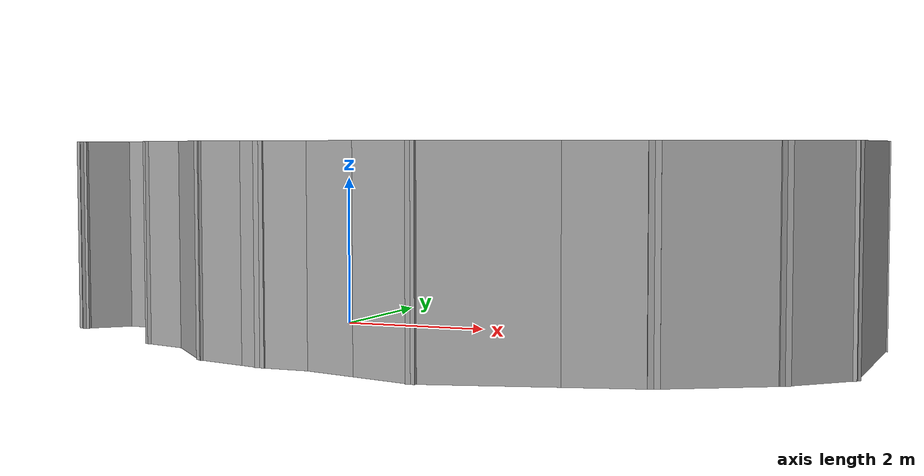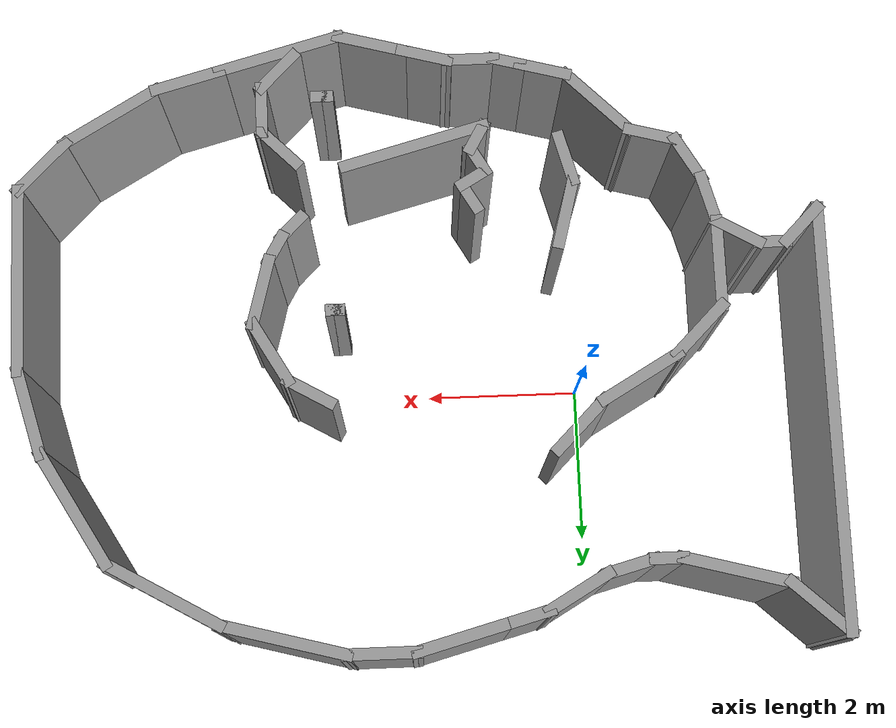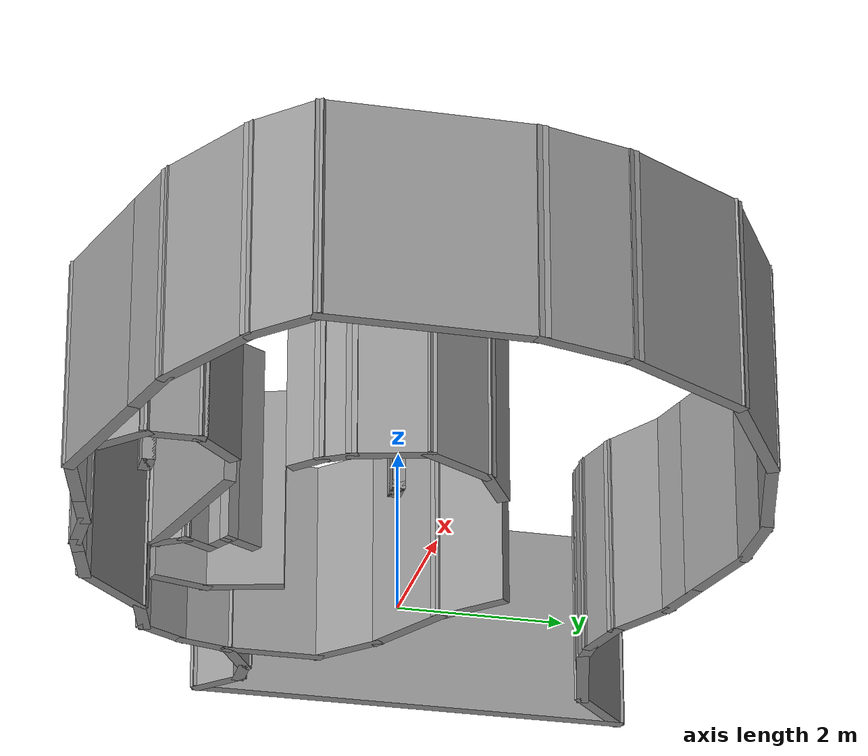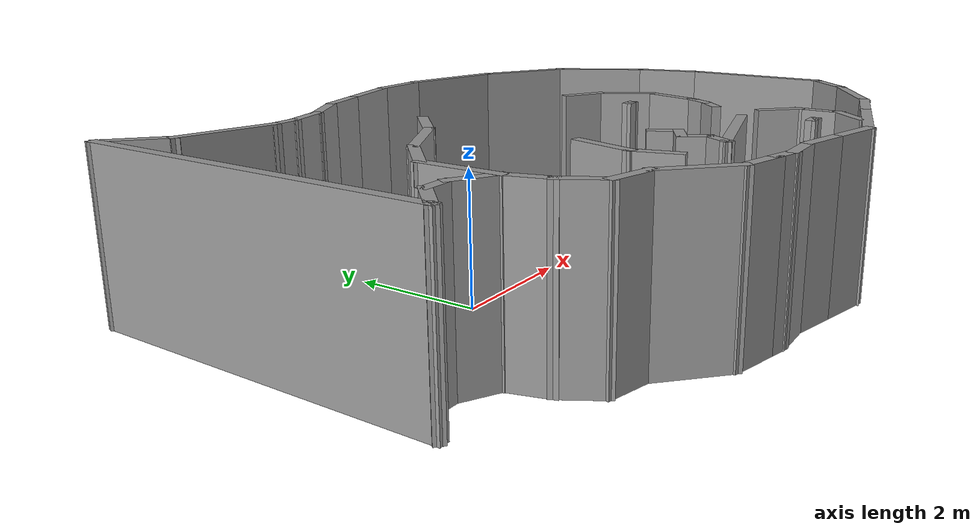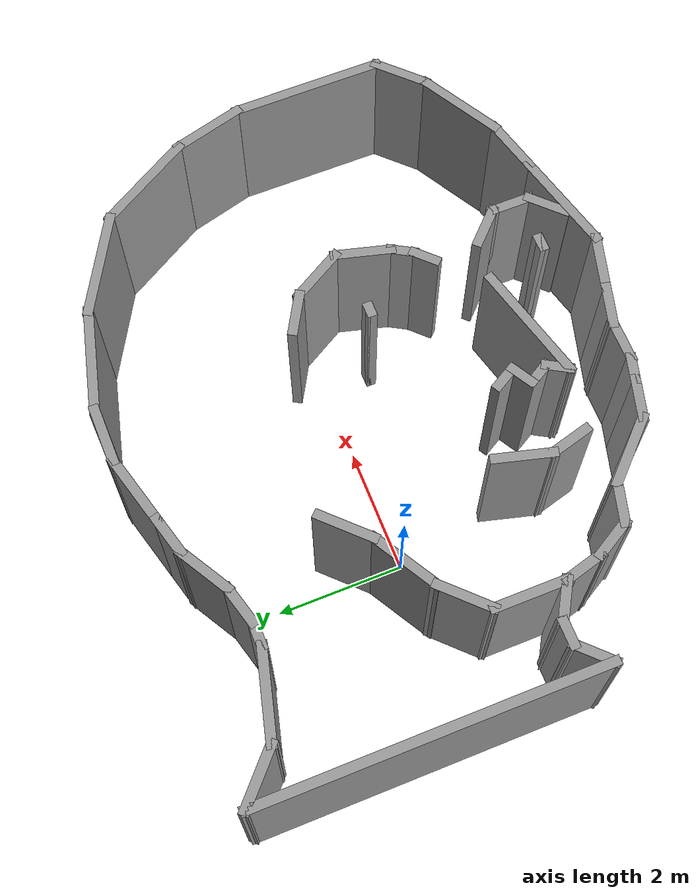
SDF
<?xml version='1.0'?>
<sdf version='1.6'>
  <model name='mememan'>
    <pose frame=''>2.08033 -0.403156 0 0 -0 -1.57</pose>
    <link name='Wall_0'>
      <collision name='Wall_0_Collision'>
        <geometry>
          <box>
            <size>1.5 0.15 2.5</size>
          </box>
        </geometry>
        <pose frame=''>0 0 1.25 0 -0 0</pose>
      </collision>
      <visual name='Wall_0_Visual'>
        <pose frame=''>0 0 1.25 0 -0 0</pose>
        <geometry>
          <box>
            <size>1.5 0.15 2.5</size>
          </box>
        </geometry>
        <material>
          <script>
            <uri>file://media/materials/scripts/gazebo.material</uri>
            <name>Gazebo/Grey</name>
          </script>
          <ambient>1 1 1 1</ambient>
        </material>
        <meta>
          <layer>0</layer>
        </meta>
      </visual>
      <pose frame=''>-3.11563 -3.74484 0 0 -0 1.309</pose>
    </link>
    <link name='Wall_10'>
      <collision name='Wall_10_Collision'>
        <geometry>
          <box>
            <size>1.75 0.15 2.5</size>
          </box>
        </geometry>
        <pose frame=''>0 0 1.25 0 -0 0</pose>
      </collision>
      <visual name='Wall_10_Visual'>
        <pose frame=''>0 0 1.25 0 -0 0</pose>
        <geometry>
          <box>
            <size>1.75 0.15 2.5</size>
          </box>
        </geometry>
        <material>
          <script>
            <uri>file://media/materials/scripts/gazebo.material</uri>
            <name>Gazebo/Grey</name>
          </script>
          <ambient>1 1 1 1</ambient>
        </material>
        <meta>
          <layer>0</layer>
        </meta>
      </visual>
      <pose frame=''>-3.1471 3.30321 0 0 -0 1.0472</pose>
    </link>
    <link name='Wall_11'>
      <collision name='Wall_11_Collision'>
        <geometry>
          <box>
            <size>1.75 0.15 2.5</size>
          </box>
        </geometry>
        <pose frame=''>0 0 1.25 0 -0 0</pose>
      </collision>
      <visual name='Wall_11_Visual'>
        <pose frame=''>0 0 1.25 0 -0 0</pose>
        <geometry>
          <box>
            <size>1.75 0.15 2.5</size>
          </box>
        </geometry>
        <material>
          <script>
            <uri>file://media/materials/scripts/gazebo.material</uri>
            <name>Gazebo/Grey</name>
          </script>
          <ambient>1 1 1 1</ambient>
        </material>
        <meta>
          <layer>0</layer>
        </meta>
      </visual>
      <pose frame=''>-2.05428 4.39603 0 0 -0 0.523599</pose>
    </link>
    <link name='Wall_12'>
      <collision name='Wall_12_Collision'>
        <geometry>
          <box>
            <size>1.25 0.15 2.5</size>
          </box>
        </geometry>
        <pose frame=''>0 0 1.25 0 -0 0</pose>
      </collision>
      <visual name='Wall_12_Visual'>
        <pose frame=''>0 0 1.25 0 -0 0</pose>
        <geometry>
          <box>
            <size>1.25 0.15 2.5</size>
          </box>
        </geometry>
        <material>
          <script>
            <uri>file://media/materials/scripts/gazebo.material</uri>
            <name>Gazebo/Grey</name>
          </script>
          <ambient>1 1 1 1</ambient>
        </material>
        <meta>
          <layer>0</layer>
        </meta>
      </visual>
      <pose frame=''>-0.830198 4.93838 0 0 -0 0.261799</pose>
    </link>
    <link name='Wall_13'>
      <collision name='Wall_13_Collision'>
        <geometry>
          <box>
            <size>2.5 0.15 2.5</size>
          </box>
        </geometry>
        <pose frame=''>0 0 1.25 0 -0 0</pose>
      </collision>
      <visual name='Wall_13_Visual'>
        <pose frame=''>0 0 1.25 0 -0 0</pose>
        <geometry>
          <box>
            <size>2.5 0.15 2.5</size>
          </box>
        </geometry>
        <material>
          <script>
            <uri>file://media/materials/scripts/gazebo.material</uri>
            <name>Gazebo/Grey</name>
          </script>
          <ambient>1 1 1 1</ambient>
        </material>
        <meta>
          <layer>0</layer>
        </meta>
      </visual>
      <pose frame=''>0.876061 5.08073 0 0 -0 0</pose>
    </link>
    <link name='Wall_14'>
      <collision name='Wall_14_Collision'>
        <geometry>
          <box>
            <size>1 0.15 2.5</size>
          </box>
        </geometry>
        <pose frame=''>0 0 1.25 0 -0 0</pose>
      </collision>
      <visual name='Wall_14_Visual'>
        <pose frame=''>0 0 1.25 0 -0 0</pose>
        <geometry>
          <box>
            <size>1 0.15 2.5</size>
          </box>
        </geometry>
        <material>
          <script>
            <uri>file://media/materials/scripts/gazebo.material</uri>
            <name>Gazebo/Grey</name>
          </script>
          <ambient>1 1 1 1</ambient>
        </material>
        <meta>
          <layer>0</layer>
        </meta>
      </visual>
      <pose frame=''>2.35158 4.78021 0 0 -0 -0.785398</pose>
    </link>
    <link name='Wall_15'>
      <collision name='Wall_15_Collision'>
        <geometry>
          <box>
            <size>1.5 0.15 2.5</size>
          </box>
        </geometry>
        <pose frame=''>0 0 1.25 0 -0 0</pose>
      </collision>
      <visual name='Wall_15_Visual'>
        <pose frame=''>0 0 1.25 0 -0 0</pose>
        <geometry>
          <box>
            <size>1.5 0.15 2.5</size>
          </box>
        </geometry>
        <material>
          <script>
            <uri>file://media/materials/scripts/gazebo.material</uri>
            <name>Gazebo/Grey</name>
          </script>
          <ambient>1 1 1 1</ambient>
        </material>
        <meta>
          <layer>0</layer>
        </meta>
      </visual>
      <pose frame=''>2.9896 3.89512 0 0 -0 -1.0472</pose>
    </link>
    <link name='Wall_16'>
      <collision name='Wall_16_Collision'>
        <geometry>
          <box>
            <size>1 0.15 2.5</size>
          </box>
        </geometry>
        <pose frame=''>0 0 1.25 0 -0 0</pose>
      </collision>
      <visual name='Wall_16_Visual'>
        <pose frame=''>0 0 1.25 0 -0 0</pose>
        <geometry>
          <box>
            <size>1 0.15 2.5</size>
          </box>
        </geometry>
        <material>
          <script>
            <uri>file://media/materials/scripts/gazebo.material</uri>
            <name>Gazebo/Grey</name>
          </script>
          <ambient>1 1 1 1</ambient>
        </material>
        <meta>
          <layer>0</layer>
        </meta>
      </visual>
      <pose frame=''>3.4371 2.90004 0 0 -0 -1.309</pose>
    </link>
    <link name='Wall_17'>
      <collision name='Wall_17_Collision'>
        <geometry>
          <box>
            <size>1.75 0.15 2.5</size>
          </box>
        </geometry>
        <pose frame=''>0 0 1.25 0 -0 0</pose>
      </collision>
      <visual name='Wall_17_Visual'>
        <pose frame=''>0 0 1.25 0 -0 0</pose>
        <geometry>
          <box>
            <size>1.75 0.15 2.5</size>
          </box>
        </geometry>
        <material>
          <script>
            <uri>file://media/materials/scripts/gazebo.material</uri>
            <name>Gazebo/Grey</name>
          </script>
          <ambient>1 1 1 1</ambient>
        </material>
        <meta>
          <layer>0</layer>
        </meta>
      </visual>
      <pose frame=''>3.75415 1.71678 0 0 -0 -1.309</pose>
    </link>
    <link name='Wall_18'>
      <collision name='Wall_18_Collision'>
        <geometry>
          <box>
            <size>1 0.15 2.5</size>
          </box>
        </geometry>
        <pose frame=''>0 0 1.25 0 -0 0</pose>
      </collision>
      <visual name='Wall_18_Visual'>
        <pose frame=''>0 0 1.25 0 -0 0</pose>
        <geometry>
          <box>
            <size>1 0.15 2.5</size>
          </box>
        </geometry>
        <material>
          <script>
            <uri>file://media/materials/scripts/gazebo.material</uri>
            <name>Gazebo/Grey</name>
          </script>
          <ambient>1 1 1 1</ambient>
        </material>
        <meta>
          <layer>0</layer>
        </meta>
      </visual>
      <pose frame=''>3.85121 0.533518 0 0 -0 -1.8326</pose>
    </link>
    <link name='Wall_2'>
      <collision name='Wall_2_Collision'>
        <geometry>
          <box>
            <size>0.5 0.15 2.5</size>
          </box>
        </geometry>
        <pose frame=''>0 0 1.25 0 -0 0</pose>
      </collision>
      <visual name='Wall_2_Visual'>
        <pose frame=''>0 0 1.25 0 -0 0</pose>
        <geometry>
          <box>
            <size>0.5 0.15 2.5</size>
          </box>
        </geometry>
        <material>
          <script>
            <uri>file://media/materials/scripts/gazebo.material</uri>
            <name>Gazebo/Grey</name>
          </script>
          <ambient>1 1 1 1</ambient>
        </material>
        <meta>
          <layer>0</layer>
        </meta>
      </visual>
      <pose frame=''>-2.94093 -2.91784 0 0 -0 1.5708</pose>
    </link>
    <link name='Wall_20'>
      <collision name='Wall_20_Collision'>
        <geometry>
          <box>
            <size>0.75 0.15 2.5</size>
          </box>
        </geometry>
        <pose frame=''>0 0 1.25 0 -0 0</pose>
      </collision>
      <visual name='Wall_20_Visual'>
        <pose frame=''>0 0 1.25 0 -0 0</pose>
        <geometry>
          <box>
            <size>0.75 0.15 2.5</size>
          </box>
        </geometry>
        <material>
          <script>
            <uri>file://media/materials/scripts/gazebo.material</uri>
            <name>Gazebo/Grey</name>
          </script>
          <ambient>1 1 1 1</ambient>
        </material>
        <meta>
          <layer>0</layer>
        </meta>
      </visual>
      <pose frame=''>3.66357 -0.166778 0 0 -0 -1.8326</pose>
    </link>
    <link name='Wall_21'>
      <collision name='Wall_21_Collision'>
        <geometry>
          <box>
            <size>0.75 0.15 2.5</size>
          </box>
        </geometry>
        <pose frame=''>0 0 1.25 0 -0 0</pose>
      </collision>
      <visual name='Wall_21_Visual'>
        <pose frame=''>0 0 1.25 0 -0 0</pose>
        <geometry>
          <box>
            <size>0.75 0.15 2.5</size>
          </box>
        </geometry>
        <material>
          <script>
            <uri>file://media/materials/scripts/gazebo.material</uri>
            <name>Gazebo/Grey</name>
          </script>
          <ambient>1 1 1 1</ambient>
        </material>
        <meta>
          <layer>0</layer>
        </meta>
      </visual>
      <pose frame=''>3.58592 -0.756556 0 0 -0 -1.5708</pose>
    </link>
    <link name='Wall_22'>
      <collision name='Wall_22_Collision'>
        <geometry>
          <box>
            <size>0.5 0.15 2.5</size>
          </box>
        </geometry>
        <pose frame=''>0 0 1.25 0 -0 0</pose>
      </collision>
      <visual name='Wall_22_Visual'>
        <pose frame=''>0 0 1.25 0 -0 0</pose>
        <geometry>
          <box>
            <size>0.5 0.15 2.5</size>
          </box>
        </geometry>
        <material>
          <script>
            <uri>file://media/materials/scripts/gazebo.material</uri>
            <name>Gazebo/Grey</name>
          </script>
          <ambient>1 1 1 1</ambient>
        </material>
        <meta>
          <layer>0</layer>
        </meta>
      </visual>
      <pose frame=''>3.54063 -1.22559 0 0 -0 -1.8326</pose>
    </link>
    <link name='Wall_23'>
      <collision name='Wall_23_Collision'>
        <geometry>
          <box>
            <size>0.75 0.15 2.5</size>
          </box>
        </geometry>
        <pose frame=''>0 0 1.25 0 -0 0</pose>
      </collision>
      <visual name='Wall_23_Visual'>
        <pose frame=''>0 0 1.25 0 -0 0</pose>
        <geometry>
          <box>
            <size>0.75 0.15 2.5</size>
          </box>
        </geometry>
        <material>
          <script>
            <uri>file://media/materials/scripts/gazebo.material</uri>
            <name>Gazebo/Grey</name>
          </script>
          <ambient>1 1 1 1</ambient>
        </material>
        <meta>
          <layer>0</layer>
        </meta>
      </visual>
      <pose frame=''>3.41769 -1.68441 0 0 -0 -1.8326</pose>
    </link>
    <link name='Wall_24'>
      <collision name='Wall_24_Collision'>
        <geometry>
          <box>
            <size>1.25 0.15 2.5</size>
          </box>
        </geometry>
        <pose frame=''>0 0 1.25 0 -0 0</pose>
      </collision>
      <visual name='Wall_24_Visual'>
        <pose frame=''>0 0 1.25 0 -0 0</pose>
        <geometry>
          <box>
            <size>1.25 0.15 2.5</size>
          </box>
        </geometry>
        <material>
          <script>
            <uri>file://media/materials/scripts/gazebo.material</uri>
            <name>Gazebo/Grey</name>
          </script>
          <ambient>1 1 1 1</ambient>
        </material>
        <meta>
          <layer>0</layer>
        </meta>
      </visual>
      <pose frame=''>2.95113 -2.36309 0 0 -0 -2.35619</pose>
    </link>
    <link name='Wall_26'>
      <collision name='Wall_26_Collision'>
        <geometry>
          <box>
            <size>0.75 0.15 2.5</size>
          </box>
        </geometry>
        <pose frame=''>0 0 1.25 0 -0 0</pose>
      </collision>
      <visual name='Wall_26_Visual'>
        <pose frame=''>0 0 1.25 0 -0 0</pose>
        <geometry>
          <box>
            <size>0.75 0.15 2.5</size>
          </box>
        </geometry>
        <material>
          <script>
            <uri>file://media/materials/scripts/gazebo.material</uri>
            <name>Gazebo/Grey</name>
          </script>
          <ambient>1 1 1 1</ambient>
        </material>
        <meta>
          <layer>0</layer>
        </meta>
      </visual>
      <pose frame=''>2.48458 -3.04178 0 0 -0 -1.8326</pose>
    </link>
    <link name='Wall_27'>
      <collision name='Wall_27_Collision'>
        <geometry>
          <box>
            <size>0.75 0.15 2.5</size>
          </box>
        </geometry>
        <pose frame=''>0 0 1.25 0 -0 0</pose>
      </collision>
      <visual name='Wall_27_Visual'>
        <pose frame=''>0 0 1.25 0 -0 0</pose>
        <geometry>
          <box>
            <size>0.75 0.15 2.5</size>
          </box>
        </geometry>
        <material>
          <script>
            <uri>file://media/materials/scripts/gazebo.material</uri>
            <name>Gazebo/Grey</name>
          </script>
          <ambient>1 1 1 1</ambient>
        </material>
        <meta>
          <layer>0</layer>
        </meta>
      </visual>
      <pose frame=''>2.14713 -3.48156 0 0 -0 -2.61799</pose>
    </link>
    <link name='Wall_28'>
      <collision name='Wall_28_Collision'>
        <geometry>
          <box>
            <size>0.75 0.15 2.5</size>
          </box>
        </geometry>
        <pose frame=''>0 0 1.25 0 -0 0</pose>
      </collision>
      <visual name='Wall_28_Visual'>
        <pose frame=''>0 0 1.25 0 -0 0</pose>
        <geometry>
          <box>
            <size>0.75 0.15 2.5</size>
          </box>
        </geometry>
        <material>
          <script>
            <uri>file://media/materials/scripts/gazebo.material</uri>
            <name>Gazebo/Grey</name>
          </script>
          <ambient>1 1 1 1</ambient>
        </material>
        <meta>
          <layer>0</layer>
        </meta>
      </visual>
      <pose frame=''>1.59754 -3.7092 0 0 -0 -2.87979</pose>
    </link>
    <link name='Wall_29'>
      <collision name='Wall_29_Collision'>
        <geometry>
          <box>
            <size>1.25 0.15 2.5</size>
          </box>
        </geometry>
        <pose frame=''>0 0 1.25 0 -0 0</pose>
      </collision>
      <visual name='Wall_29_Visual'>
        <pose frame=''>0 0 1.25 0 -0 0</pose>
        <geometry>
          <box>
            <size>1.25 0.15 2.5</size>
          </box>
        </geometry>
        <material>
          <script>
            <uri>file://media/materials/scripts/gazebo.material</uri>
            <name>Gazebo/Grey</name>
          </script>
          <ambient>1 1 1 1</ambient>
        </material>
        <meta>
          <layer>0</layer>
        </meta>
      </visual>
      <pose frame=''>0.757763 -3.78685 0 0 -0 3.14159</pose>
    </link>
    <link name='Wall_3'>
      <collision name='Wall_3_Collision'>
        <geometry>
          <box>
            <size>0.75 0.15 2.5</size>
          </box>
        </geometry>
        <pose frame=''>0 0 1.25 0 -0 0</pose>
      </collision>
      <visual name='Wall_3_Visual'>
        <pose frame=''>0 0 1.25 0 -0 0</pose>
        <geometry>
          <box>
            <size>0.75 0.15 2.5</size>
          </box>
        </geometry>
        <material>
          <script>
            <uri>file://media/materials/scripts/gazebo.material</uri>
            <name>Gazebo/Grey</name>
          </script>
          <ambient>1 1 1 1</ambient>
        </material>
        <meta>
          <layer>0</layer>
        </meta>
      </visual>
      <pose frame=''>-3.01857 -2.45307 0 0 -0 1.8326</pose>
    </link>
    <link name='Wall_31'>
      <collision name='Wall_31_Collision'>
        <geometry>
          <box>
            <size>1 0.15 2.5</size>
          </box>
        </geometry>
        <pose frame=''>0 0 1.25 0 -0 0</pose>
      </collision>
      <visual name='Wall_31_Visual'>
        <pose frame=''>0 0 1.25 0 -0 0</pose>
        <geometry>
          <box>
            <size>1 0.15 2.5</size>
          </box>
        </geometry>
        <material>
          <script>
            <uri>file://media/materials/scripts/gazebo.material</uri>
            <name>Gazebo/Grey</name>
          </script>
          <ambient>1 1 1 1</ambient>
        </material>
        <meta>
          <layer>0</layer>
        </meta>
      </visual>
      <pose frame=''>-0.092757 -3.48633 0 0 -0 2.35619</pose>
    </link>
    <link name='Wall_32'>
      <collision name='Wall_32_Collision'>
        <geometry>
          <box>
            <size>1.25 0.15 2.5</size>
          </box>
        </geometry>
        <pose frame=''>0 0 1.25 0 -0 0</pose>
      </collision>
      <visual name='Wall_32_Visual'>
        <pose frame=''>0 0 1.25 0 -0 0</pose>
        <geometry>
          <box>
            <size>1.25 0.15 2.5</size>
          </box>
        </geometry>
        <material>
          <script>
            <uri>file://media/materials/scripts/gazebo.material</uri>
            <name>Gazebo/Grey</name>
          </script>
          <ambient>1 1 1 1</ambient>
        </material>
        <meta>
          <layer>0</layer>
        </meta>
      </visual>
      <pose frame=''>-0.668278 -2.70949 0 0 -0 2.0944</pose>
    </link>
    <link name='Wall_33'>
      <collision name='Wall_33_Collision'>
        <geometry>
          <box>
            <size>1 0.15 2.5</size>
          </box>
        </geometry>
        <pose frame=''>0 0 1.25 0 -0 0</pose>
      </collision>
      <visual name='Wall_33_Visual'>
        <pose frame=''>0 0 1.25 0 -0 0</pose>
        <geometry>
          <box>
            <size>1 0.15 2.5</size>
          </box>
        </geometry>
        <material>
          <script>
            <uri>file://media/materials/scripts/gazebo.material</uri>
            <name>Gazebo/Grey</name>
          </script>
          <ambient>1 1 1 1</ambient>
        </material>
        <meta>
          <layer>0</layer>
        </meta>
      </visual>
      <pose frame=''>-1.2438 -1.93266 0 0 -0 2.35619</pose>
    </link>
    <link name='Wall_35'>
      <collision name='Wall_35_Collision'>
        <geometry>
          <box>
            <size>0.75 0.15 2.5</size>
          </box>
        </geometry>
        <pose frame=''>0 0 1.25 0 -0 0</pose>
      </collision>
      <visual name='Wall_35_Visual'>
        <pose frame=''>0 0 1.25 0 -0 0</pose>
        <geometry>
          <box>
            <size>0.75 0.15 2.5</size>
          </box>
        </geometry>
        <material>
          <script>
            <uri>file://media/materials/scripts/gazebo.material</uri>
            <name>Gazebo/Grey</name>
          </script>
          <ambient>1 1 1 1</ambient>
        </material>
        <meta>
          <layer>0</layer>
        </meta>
      </visual>
      <pose frame=''>1.15776 -4.04666 0 0 -0 -2.0944</pose>
    </link>
    <link name='Wall_36'>
      <collision name='Wall_36_Collision'>
        <geometry>
          <box>
            <size>0.5 0.15 2.5</size>
          </box>
        </geometry>
        <pose frame=''>0 0 1.25 0 -0 0</pose>
      </collision>
      <visual name='Wall_36_Visual'>
        <pose frame=''>0 0 1.25 0 -0 0</pose>
        <geometry>
          <box>
            <size>0.5 0.15 2.5</size>
          </box>
        </geometry>
        <material>
          <script>
            <uri>file://media/materials/scripts/gazebo.material</uri>
            <name>Gazebo/Grey</name>
          </script>
          <ambient>1 1 1 1</ambient>
        </material>
        <meta>
          <layer>0</layer>
        </meta>
      </visual>
      <pose frame=''>1.00776 -4.48147 0 0 -0 -1.5708</pose>
    </link>
    <link name='Wall_37'>
      <collision name='Wall_37_Collision'>
        <geometry>
          <box>
            <size>0.75 0.15 2.5</size>
          </box>
        </geometry>
        <pose frame=''>0 0 1.25 0 -0 0</pose>
      </collision>
      <visual name='Wall_37_Visual'>
        <pose frame=''>0 0 1.25 0 -0 0</pose>
        <geometry>
          <box>
            <size>0.75 0.15 2.5</size>
          </box>
        </geometry>
        <material>
          <script>
            <uri>file://media/materials/scripts/gazebo.material</uri>
            <name>Gazebo/Grey</name>
          </script>
          <ambient>1 1 1 1</ambient>
        </material>
        <meta>
          <layer>0</layer>
        </meta>
      </visual>
      <pose frame=''>1.21989 -4.8686 0 0 -0 -0.785398</pose>
    </link>
    <link name='Wall_38'>
      <collision name='Wall_38_Collision'>
        <geometry>
          <box>
            <size>5.5 0.15 2.5</size>
          </box>
        </geometry>
        <pose frame=''>0 0 1.25 0 -0 0</pose>
      </collision>
      <visual name='Wall_38_Visual'>
        <pose frame=''>0 0 1.25 0 -0 0</pose>
        <geometry>
          <box>
            <size>5.5 0.15 2.5</size>
          </box>
        </geometry>
        <material>
          <script>
            <uri>file://media/materials/scripts/gazebo.material</uri>
            <name>Gazebo/Grey</name>
          </script>
          <ambient>1 1 1 1</ambient>
        </material>
        <meta>
          <layer>0</layer>
        </meta>
      </visual>
      <pose frame=''>-1.24297 -5.08073 0 0 -0 3.14159</pose>
    </link>
    <link name='Wall_39'>
      <collision name='Wall_39_Collision'>
        <geometry>
          <box>
            <size>1.07824 0.15 2.5</size>
          </box>
        </geometry>
        <pose frame=''>0 0 1.25 0 -0 0</pose>
      </collision>
      <visual name='Wall_39_Visual'>
        <pose frame=''>0 0 1.25 0 -0 0</pose>
        <geometry>
          <box>
            <size>1.07824 0.15 2.5</size>
          </box>
        </geometry>
        <material>
          <script>
            <uri>file://media/materials/scripts/gazebo.material</uri>
            <name>Gazebo/Grey</name>
          </script>
          <ambient>1 1 1 1</ambient>
        </material>
        <meta>
          <layer>0</layer>
        </meta>
      </visual>
      <pose frame=''>-3.60415 -4.73879 0 0 -0 0.828255</pose>
    </link>
    <link name='Wall_4'>
      <collision name='Wall_4_Collision'>
        <geometry>
          <box>
            <size>1 0.15 2.5</size>
          </box>
        </geometry>
        <pose frame=''>0 0 1.25 0 -0 0</pose>
      </collision>
      <visual name='Wall_4_Visual'>
        <pose frame=''>0 0 1.25 0 -0 0</pose>
        <geometry>
          <box>
            <size>1 0.15 2.5</size>
          </box>
        </geometry>
        <material>
          <script>
            <uri>file://media/materials/scripts/gazebo.material</uri>
            <name>Gazebo/Grey</name>
          </script>
          <ambient>1 1 1 1</ambient>
        </material>
        <meta>
          <layer>0</layer>
        </meta>
      </visual>
      <pose frame=''>-3.30872 -1.79523 0 0 -0 2.0944</pose>
    </link>
    <link name='Wall_41'>
      <collision name='Wall_41_Collision'>
        <geometry>
          <box>
            <size>0.75 0.15 2.5</size>
          </box>
        </geometry>
        <pose frame=''>0 0 1.25 0 -0 0</pose>
      </collision>
      <visual name='Wall_41_Visual'>
        <pose frame=''>0 0 1.25 0 -0 0</pose>
        <geometry>
          <box>
            <size>0.75 0.15 2.5</size>
          </box>
        </geometry>
        <material>
          <script>
            <uri>file://media/materials/scripts/gazebo.material</uri>
            <name>Gazebo/Grey</name>
          </script>
          <ambient>1 1 1 1</ambient>
        </material>
        <meta>
          <layer>0</layer>
        </meta>
      </visual>
      <pose frame=''>2.48811 1.74223 0 0 -0 0.785398</pose>
    </link>
    <link name='Wall_42'>
      <collision name='Wall_42_Collision'>
        <geometry>
          <box>
            <size>0.15 0.15 2.5</size>
          </box>
        </geometry>
        <pose frame=''>0 0 1.25 0 -0 0</pose>
      </collision>
      <visual name='Wall_42_Visual'>
        <pose frame=''>0 0 1.25 0 -0 0</pose>
        <geometry>
          <box>
            <size>0.15 0.15 2.5</size>
          </box>
        </geometry>
        <material>
          <script>
            <uri>file://media/materials/scripts/gazebo.material</uri>
            <name>Gazebo/Grey</name>
          </script>
          <ambient>1 1 1 1</ambient>
        </material>
        <meta>
          <layer>0</layer>
        </meta>
      </visual>
      <pose frame=''>2.70024 1.95436 0 0 -0 0</pose>
    </link>
    <link name='Wall_43'>
      <collision name='Wall_43_Collision'>
        <geometry>
          <box>
            <size>0.75 0.15 2.5</size>
          </box>
        </geometry>
        <pose frame=''>0 0 1.25 0 -0 0</pose>
      </collision>
      <visual name='Wall_43_Visual'>
        <pose frame=''>0 0 1.25 0 -0 0</pose>
        <geometry>
          <box>
            <size>0.75 0.15 2.5</size>
          </box>
        </geometry>
        <material>
          <script>
            <uri>file://media/materials/scripts/gazebo.material</uri>
            <name>Gazebo/Grey</name>
          </script>
          <ambient>1 1 1 1</ambient>
        </material>
        <meta>
          <layer>0</layer>
        </meta>
      </visual>
      <pose frame=''>3.00024 1.95436 0 0 -0 0</pose>
    </link>
    <link name='Wall_44'>
      <collision name='Wall_44_Collision'>
        <geometry>
          <box>
            <size>0.75 0.15 2.5</size>
          </box>
        </geometry>
        <pose frame=''>0 0 1.25 0 -0 0</pose>
      </collision>
      <visual name='Wall_44_Visual'>
        <pose frame=''>0 0 1.25 0 -0 0</pose>
        <geometry>
          <box>
            <size>0.75 0.15 2.5</size>
          </box>
        </geometry>
        <material>
          <script>
            <uri>file://media/materials/scripts/gazebo.material</uri>
            <name>Gazebo/Grey</name>
          </script>
          <ambient>1 1 1 1</ambient>
        </material>
        <meta>
          <layer>0</layer>
        </meta>
      </visual>
      <pose frame=''>3.51237 1.74223 0 0 -0 -0.785398</pose>
    </link>
    <link name='Wall_46'>
      <collision name='Wall_46_Collision'>
        <geometry>
          <box>
            <size>0.5 0.15 2.5</size>
          </box>
        </geometry>
        <pose frame=''>0 0 1.25 0 -0 0</pose>
      </collision>
      <visual name='Wall_46_Visual'>
        <pose frame=''>0 0 1.25 0 -0 0</pose>
        <geometry>
          <box>
            <size>0.5 0.15 2.5</size>
          </box>
        </geometry>
        <material>
          <script>
            <uri>file://media/materials/scripts/gazebo.material</uri>
            <name>Gazebo/Grey</name>
          </script>
          <ambient>1 1 1 1</ambient>
        </material>
        <meta>
          <layer>0</layer>
        </meta>
      </visual>
      <pose frame=''>1.43518 1.60758 0 0 -0 2.35619</pose>
    </link>
    <link name='Wall_47'>
      <collision name='Wall_47_Collision'>
        <geometry>
          <box>
            <size>0.5 0.15 2.5</size>
          </box>
        </geometry>
        <pose frame=''>0 0 1.25 0 -0 0</pose>
      </collision>
      <visual name='Wall_47_Visual'>
        <pose frame=''>0 0 1.25 0 -0 0</pose>
        <geometry>
          <box>
            <size>0.5 0.15 2.5</size>
          </box>
        </geometry>
        <material>
          <script>
            <uri>file://media/materials/scripts/gazebo.material</uri>
            <name>Gazebo/Grey</name>
          </script>
          <ambient>1 1 1 1</ambient>
        </material>
        <meta>
          <layer>0</layer>
        </meta>
      </visual>
      <pose frame=''>1.15988 1.81882 0 0 -0 2.61799</pose>
    </link>
    <link name='Wall_48'>
      <collision name='Wall_48_Collision'>
        <geometry>
          <box>
            <size>1 0.15 2.5</size>
          </box>
        </geometry>
        <pose frame=''>0 0 1.25 0 -0 0</pose>
      </collision>
      <visual name='Wall_48_Visual'>
        <pose frame=''>0 0 1.25 0 -0 0</pose>
        <geometry>
          <box>
            <size>1 0.15 2.5</size>
          </box>
        </geometry>
        <material>
          <script>
            <uri>file://media/materials/scripts/gazebo.material</uri>
            <name>Gazebo/Grey</name>
          </script>
          <ambient>1 1 1 1</ambient>
        </material>
        <meta>
          <layer>0</layer>
        </meta>
      </visual>
      <pose frame=''>0.597811 2.01632 0 0 -0 2.87979</pose>
    </link>
    <link name='Wall_49'>
      <collision name='Wall_49_Collision'>
        <geometry>
          <box>
            <size>1 0.15 2.5</size>
          </box>
        </geometry>
        <pose frame=''>0 0 1.25 0 -0 0</pose>
      </collision>
      <visual name='Wall_49_Visual'>
        <pose frame=''>0 0 1.25 0 -0 0</pose>
        <geometry>
          <box>
            <size>1 0.15 2.5</size>
          </box>
        </geometry>
        <material>
          <script>
            <uri>file://media/materials/scripts/gazebo.material</uri>
            <name>Gazebo/Grey</name>
          </script>
          <ambient>1 1 1 1</ambient>
        </material>
        <meta>
          <layer>0</layer>
        </meta>
      </visual>
      <pose frame=''>-0.180768 1.91382 0 0 -0 -2.61799</pose>
    </link>
    <link name='Wall_5'>
      <collision name='Wall_5_Collision'>
        <geometry>
          <box>
            <size>0.75 0.15 2.5</size>
          </box>
        </geometry>
        <pose frame=''>0 0 1.25 0 -0 0</pose>
      </collision>
      <visual name='Wall_5_Visual'>
        <pose frame=''>0 0 1.25 0 -0 0</pose>
        <geometry>
          <box>
            <size>0.75 0.15 2.5</size>
          </box>
        </geometry>
        <material>
          <script>
            <uri>file://media/materials/scripts/gazebo.material</uri>
            <name>Gazebo/Grey</name>
          </script>
          <ambient>1 1 1 1</ambient>
        </material>
        <meta>
          <layer>0</layer>
        </meta>
      </visual>
      <pose frame=''>-3.59886 -1.13739 0 0 -0 1.8326</pose>
    </link>
    <link name='Wall_50'>
      <collision name='Wall_50_Collision'>
        <geometry>
          <box>
            <size>0.75 0.15 2.5</size>
          </box>
        </geometry>
        <pose frame=''>0 0 1.25 0 -0 0</pose>
      </collision>
      <visual name='Wall_50_Visual'>
        <pose frame=''>0 0 1.25 0 -0 0</pose>
        <geometry>
          <box>
            <size>0.75 0.15 2.5</size>
          </box>
        </geometry>
        <material>
          <script>
            <uri>file://media/materials/scripts/gazebo.material</uri>
            <name>Gazebo/Grey</name>
          </script>
          <ambient>1 1 1 1</ambient>
        </material>
        <meta>
          <layer>0</layer>
        </meta>
      </visual>
      <pose frame=''>-0.698829 1.44151 0 0 -0 -2.0944</pose>
    </link>
    <link name='Wall_52'>
      <collision name='Wall_52_Collision'>
        <geometry>
          <box>
            <size>0.25 0.15 2.5</size>
          </box>
        </geometry>
        <pose frame=''>0 0 1.25 0 -0 0</pose>
      </collision>
      <visual name='Wall_52_Visual'>
        <pose frame=''>0 0 1.25 0 -0 0</pose>
        <geometry>
          <box>
            <size>0.25 0.15 2.5</size>
          </box>
        </geometry>
        <material>
          <script>
            <uri>file://media/materials/scripts/gazebo.material</uri>
            <name>Gazebo/Grey</name>
          </script>
          <ambient>1 1 1 1</ambient>
        </material>
        <meta>
          <layer>0</layer>
        </meta>
      </visual>
      <pose frame=''>0.333004 1.08688 0 0 -0 -1.5708</pose>
    </link>
    <link name='Wall_53'>
      <collision name='Wall_53_Collision'>
        <geometry>
          <box>
            <size>0.25 0.15 2.5</size>
          </box>
        </geometry>
        <pose frame=''>0 0 1.25 0 -0 0</pose>
      </collision>
      <visual name='Wall_53_Visual'>
        <pose frame=''>0 0 1.25 0 -0 0</pose>
        <geometry>
          <box>
            <size>0.25 0.15 2.5</size>
          </box>
        </geometry>
        <material>
          <script>
            <uri>file://media/materials/scripts/gazebo.material</uri>
            <name>Gazebo/Grey</name>
          </script>
          <ambient>1 1 1 1</ambient>
        </material>
        <meta>
          <layer>0</layer>
        </meta>
      </visual>
      <pose frame=''>0.333004 1.08688 0 0 -0 1.5708</pose>
    </link>
    <link name='Wall_54'>
      <collision name='Wall_54_Collision'>
        <geometry>
          <box>
            <size>0.25 0.15 2.5</size>
          </box>
        </geometry>
        <pose frame=''>0 0 1.25 0 -0 0</pose>
      </collision>
      <visual name='Wall_54_Visual'>
        <pose frame=''>0 0 1.25 0 -0 0</pose>
        <geometry>
          <box>
            <size>0.25 0.15 2.5</size>
          </box>
        </geometry>
        <material>
          <script>
            <uri>file://media/materials/scripts/gazebo.material</uri>
            <name>Gazebo/Grey</name>
          </script>
          <ambient>1 1 1 1</ambient>
        </material>
        <meta>
          <layer>0</layer>
        </meta>
      </visual>
      <pose frame=''>0.333004 1.08688 0 0 -0 -1.5708</pose>
    </link>
    <link name='Wall_56'>
      <collision name='Wall_56_Collision'>
        <geometry>
          <box>
            <size>0.3 0.15 2.5</size>
          </box>
        </geometry>
        <pose frame=''>0 0 1.25 0 -0 0</pose>
      </collision>
      <visual name='Wall_56_Visual'>
        <pose frame=''>0 0 1.25 0 -0 0</pose>
        <geometry>
          <box>
            <size>0.3 0.15 2.5</size>
          </box>
        </geometry>
        <material>
          <script>
            <uri>file://media/materials/scripts/gazebo.material</uri>
            <name>Gazebo/Grey</name>
          </script>
          <ambient>1 1 1 1</ambient>
        </material>
        <meta>
          <layer>0</layer>
        </meta>
      </visual>
      <pose frame=''>3.15494 1.17753 0 0 -0 -1.5708</pose>
    </link>
    <link name='Wall_57'>
      <collision name='Wall_57_Collision'>
        <geometry>
          <box>
            <size>0.3 0.15 2.5</size>
          </box>
        </geometry>
        <pose frame=''>0 0 1.25 0 -0 0</pose>
      </collision>
      <visual name='Wall_57_Visual'>
        <pose frame=''>0 0 1.25 0 -0 0</pose>
        <geometry>
          <box>
            <size>0.3 0.15 2.5</size>
          </box>
        </geometry>
        <material>
          <script>
            <uri>file://media/materials/scripts/gazebo.material</uri>
            <name>Gazebo/Grey</name>
          </script>
          <ambient>1 1 1 1</ambient>
        </material>
        <meta>
          <layer>0</layer>
        </meta>
      </visual>
      <pose frame=''>3.15494 1.17753 0 0 -0 1.5708</pose>
    </link>
    <link name='Wall_58'>
      <collision name='Wall_58_Collision'>
        <geometry>
          <box>
            <size>0.3 0.15 2.5</size>
          </box>
        </geometry>
        <pose frame=''>0 0 1.25 0 -0 0</pose>
      </collision>
      <visual name='Wall_58_Visual'>
        <pose frame=''>0 0 1.25 0 -0 0</pose>
        <geometry>
          <box>
            <size>0.3 0.15 2.5</size>
          </box>
        </geometry>
        <material>
          <script>
            <uri>file://media/materials/scripts/gazebo.material</uri>
            <name>Gazebo/Grey</name>
          </script>
          <ambient>1 1 1 1</ambient>
        </material>
        <meta>
          <layer>0</layer>
        </meta>
      </visual>
      <pose frame=''>3.15494 1.17753 0 0 -0 -1.5708</pose>
    </link>
    <link name='Wall_60'>
      <collision name='Wall_60_Collision'>
        <geometry>
          <box>
            <size>2 0.15 2.5</size>
          </box>
        </geometry>
        <pose frame=''>0 0 1.25 0 -0 0</pose>
      </collision>
      <visual name='Wall_60_Visual'>
        <pose frame=''>0 0 1.25 0 -0 0</pose>
        <geometry>
          <box>
            <size>2 0.15 2.5</size>
          </box>
        </geometry>
        <material>
          <script>
            <uri>file://media/materials/scripts/gazebo.material</uri>
            <name>Gazebo/Grey</name>
          </script>
          <ambient>1 1 1 1</ambient>
        </material>
        <meta>
          <layer>0</layer>
        </meta>
      </visual>
      <pose frame=''>2.44599 0.01209 0 0 -0 -1.309</pose>
    </link>
    <link name='Wall_61'>
      <collision name='Wall_61_Collision'>
        <geometry>
          <box>
            <size>0.5 0.15 2.5</size>
          </box>
        </geometry>
        <pose frame=''>0 0 1.25 0 -0 0</pose>
      </collision>
      <visual name='Wall_61_Visual'>
        <pose frame=''>0 0 1.25 0 -0 0</pose>
        <geometry>
          <box>
            <size>0.5 0.15 2.5</size>
          </box>
        </geometry>
        <material>
          <script>
            <uri>file://media/materials/scripts/gazebo.material</uri>
            <name>Gazebo/Grey</name>
          </script>
          <ambient>1 1 1 1</ambient>
        </material>
        <meta>
          <layer>0</layer>
        </meta>
      </visual>
      <pose frame=''>2.53384 -0.793892 0 0 -0 2.61799</pose>
    </link>
    <link name='Wall_62'>
      <collision name='Wall_62_Collision'>
        <geometry>
          <box>
            <size>0.5 0.15 2.5</size>
          </box>
        </geometry>
        <pose frame=''>0 0 1.25 0 -0 0</pose>
      </collision>
      <visual name='Wall_62_Visual'>
        <pose frame=''>0 0 1.25 0 -0 0</pose>
        <geometry>
          <box>
            <size>0.5 0.15 2.5</size>
          </box>
        </geometry>
        <material>
          <script>
            <uri>file://media/materials/scripts/gazebo.material</uri>
            <name>Gazebo/Grey</name>
          </script>
          <ambient>1 1 1 1</ambient>
        </material>
        <meta>
          <layer>0</layer>
        </meta>
      </visual>
      <pose frame=''>2.23074 -0.793892 0 0 -0 -2.61799</pose>
    </link>
    <link name='Wall_63'>
      <collision name='Wall_63_Collision'>
        <geometry>
          <box>
            <size>0.5 0.15 2.5</size>
          </box>
        </geometry>
        <pose frame=''>0 0 1.25 0 -0 0</pose>
      </collision>
      <visual name='Wall_63_Visual'>
        <pose frame=''>0 0 1.25 0 -0 0</pose>
        <geometry>
          <box>
            <size>0.5 0.15 2.5</size>
          </box>
        </geometry>
        <material>
          <script>
            <uri>file://media/materials/scripts/gazebo.material</uri>
            <name>Gazebo/Grey</name>
          </script>
          <ambient>1 1 1 1</ambient>
        </material>
        <meta>
          <layer>0</layer>
        </meta>
      </visual>
      <pose frame=''>1.99168 -0.729837 0 0 -0 2.0944</pose>
    </link>
    <link name='Wall_64'>
      <collision name='Wall_64_Collision'>
        <geometry>
          <box>
            <size>0.5 0.15 2.5</size>
          </box>
        </geometry>
        <pose frame=''>0 0 1.25 0 -0 0</pose>
      </collision>
      <visual name='Wall_64_Visual'>
        <pose frame=''>0 0 1.25 0 -0 0</pose>
        <geometry>
          <box>
            <size>0.5 0.15 2.5</size>
          </box>
        </geometry>
        <material>
          <script>
            <uri>file://media/materials/scripts/gazebo.material</uri>
            <name>Gazebo/Grey</name>
          </script>
          <ambient>1 1 1 1</ambient>
        </material>
        <meta>
          <layer>0</layer>
        </meta>
      </visual>
      <pose frame=''>1.75263 -0.665783 0 0 -0 -2.61799</pose>
    </link>
    <link name='Wall_66'>
      <collision name='Wall_66_Collision'>
        <geometry>
          <box>
            <size>1 0.15 2.5</size>
          </box>
        </geometry>
        <pose frame=''>0 0 1.25 0 -0 0</pose>
      </collision>
      <visual name='Wall_66_Visual'>
        <pose frame=''>0 0 1.25 0 -0 0</pose>
        <geometry>
          <box>
            <size>1 0.15 2.5</size>
          </box>
        </geometry>
        <material>
          <script>
            <uri>file://media/materials/scripts/gazebo.material</uri>
            <name>Gazebo/Grey</name>
          </script>
          <ambient>1 1 1 1</ambient>
        </material>
        <meta>
          <layer>0</layer>
        </meta>
      </visual>
      <pose frame=''>1.50683 -1.88758 0 0 -0 -0.261799</pose>
    </link>
    <link name='Wall_67'>
      <collision name='Wall_67_Collision'>
        <geometry>
          <box>
            <size>0.75 0.15 2.5</size>
          </box>
        </geometry>
        <pose frame=''>0 0 1.25 0 -0 0</pose>
      </collision>
      <visual name='Wall_67_Visual'>
        <pose frame=''>0 0 1.25 0 -0 0</pose>
        <geometry>
          <box>
            <size>0.75 0.15 2.5</size>
          </box>
        </geometry>
        <material>
          <script>
            <uri>file://media/materials/scripts/gazebo.material</uri>
            <name>Gazebo/Grey</name>
          </script>
          <ambient>1 1 1 1</ambient>
        </material>
        <meta>
          <layer>0</layer>
        </meta>
      </visual>
      <pose frame=''>2.20713 -1.91993 0 0 -0 0.261799</pose>
    </link>
    <link name='Wall_7'>
      <collision name='Wall_7_Collision'>
        <geometry>
          <box>
            <size>1.25 0.15 2.5</size>
          </box>
        </geometry>
        <pose frame=''>0 0 1.25 0 -0 0</pose>
      </collision>
      <visual name='Wall_7_Visual'>
        <pose frame=''>0 0 1.25 0 -0 0</pose>
        <geometry>
          <box>
            <size>1.25 0.15 2.5</size>
          </box>
        </geometry>
        <material>
          <script>
            <uri>file://media/materials/scripts/gazebo.material</uri>
            <name>Gazebo/Grey</name>
          </script>
          <ambient>1 1 1 1</ambient>
        </material>
        <meta>
          <layer>0</layer>
        </meta>
      </visual>
      <pose frame=''>-3.81886 -0.316353 0 0 -0 1.8326</pose>
    </link>
    <link name='Wall_8'>
      <collision name='Wall_8_Collision'>
        <geometry>
          <box>
            <size>1 0.15 2.5</size>
          </box>
        </geometry>
        <pose frame=''>0 0 1.25 0 -0 0</pose>
      </collision>
      <visual name='Wall_8_Visual'>
        <pose frame=''>0 0 1.25 0 -0 0</pose>
        <geometry>
          <box>
            <size>1 0.15 2.5</size>
          </box>
        </geometry>
        <material>
          <script>
            <uri>file://media/materials/scripts/gazebo.material</uri>
            <name>Gazebo/Grey</name>
          </script>
          <ambient>1 1 1 1</ambient>
        </material>
        <meta>
          <layer>0</layer>
        </meta>
      </visual>
      <pose frame=''>-3.96121 0.639907 0 0 -0 1.5708</pose>
    </link>
    <link name='Wall_9'>
      <collision name='Wall_9_Collision'>
        <geometry>
          <box>
            <size>1.75 0.15 2.5</size>
          </box>
        </geometry>
        <pose frame=''>0 0 1.25 0 -0 0</pose>
      </collision>
      <visual name='Wall_9_Visual'>
        <pose frame=''>0 0 1.25 0 -0 0</pose>
        <geometry>
          <box>
            <size>1.75 0.15 2.5</size>
          </box>
        </geometry>
        <material>
          <script>
            <uri>file://media/materials/scripts/gazebo.material</uri>
            <name>Gazebo/Grey</name>
          </script>
          <ambient>1 1 1 1</ambient>
        </material>
        <meta>
          <layer>0</layer>
        </meta>
      </visual>
      <pose frame=''>-3.75415 1.83765 0 0 -0 1.309</pose>
    </link>
    <static>1</static>
  </model>
</sdf>
